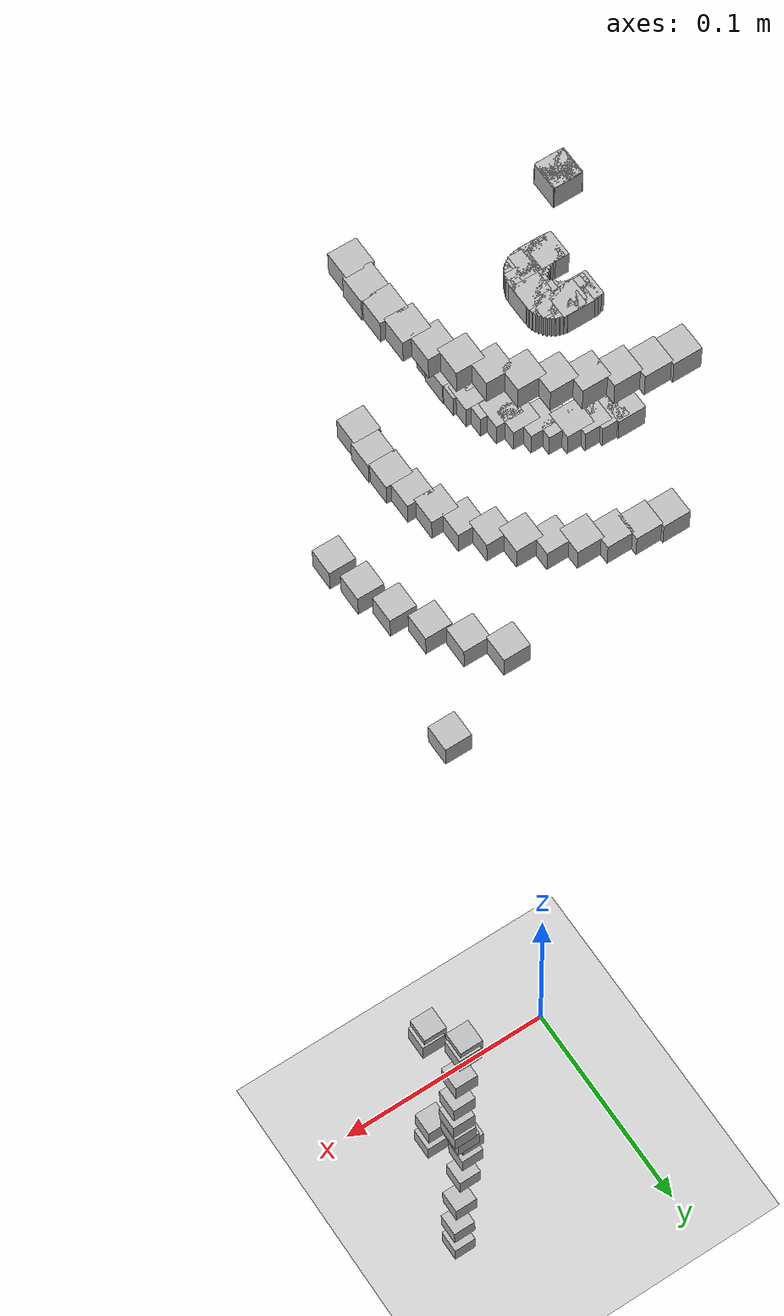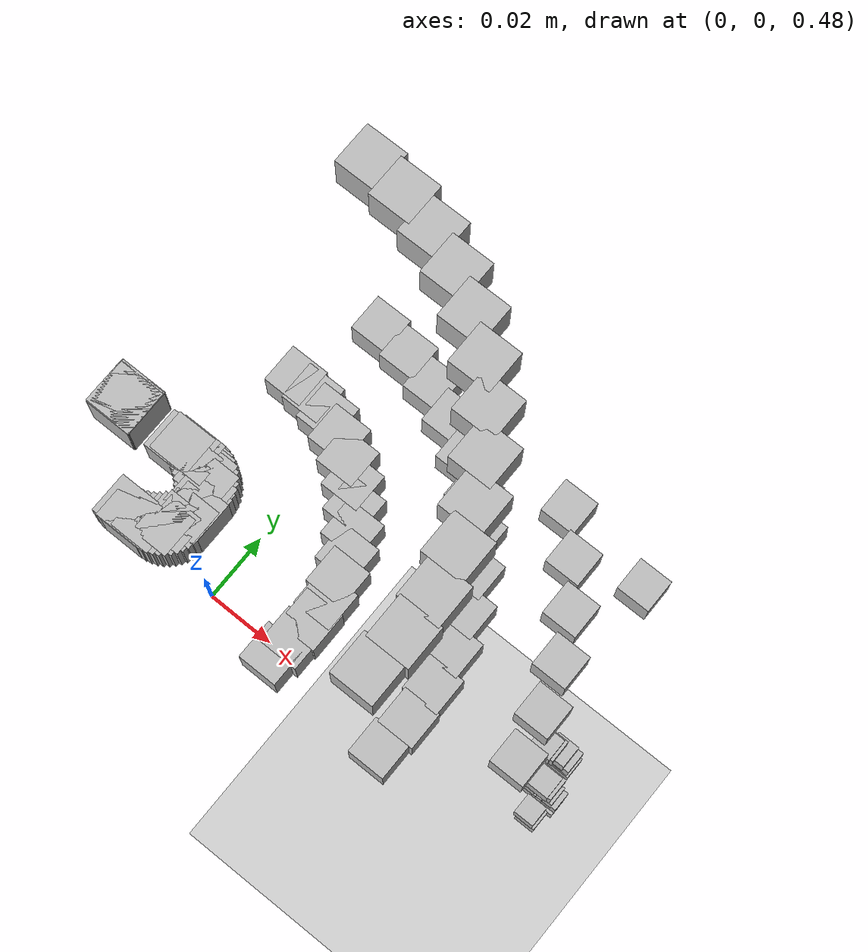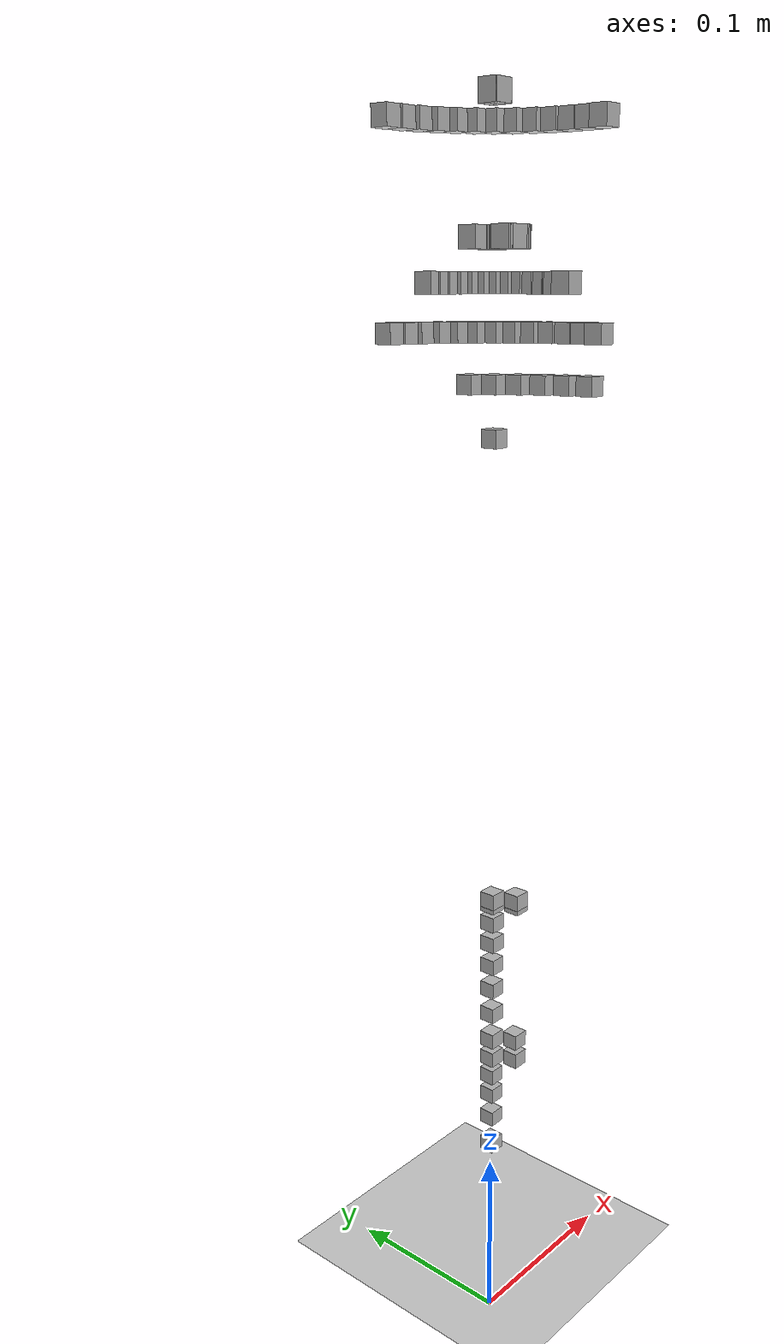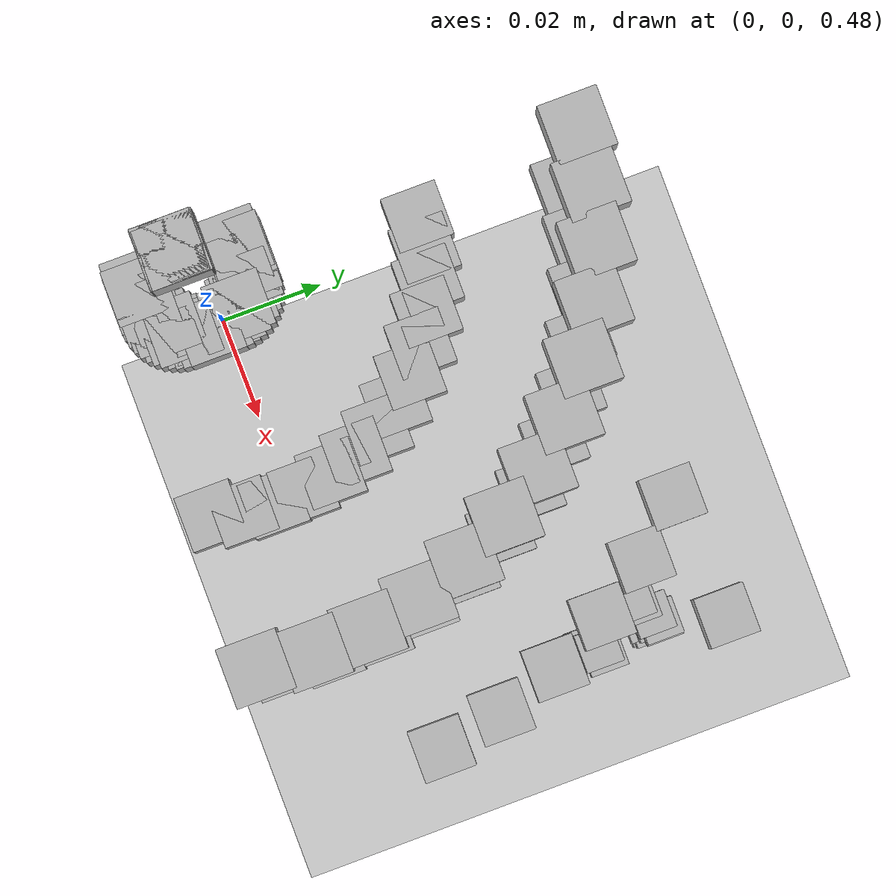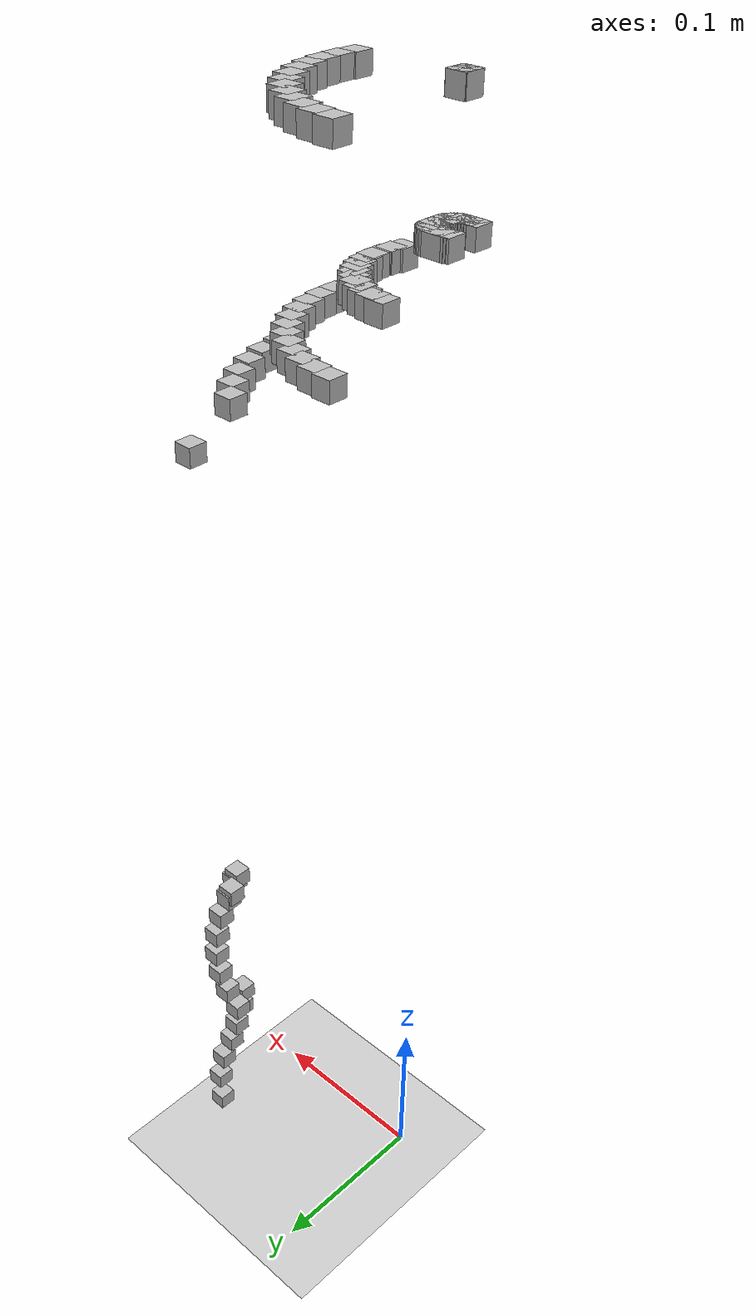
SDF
<sdf version="1.6">
 <world name="default">
  <model name="ground_plane">
   <static>1</static>
   <link name="link">
    <collision name="collision">
     <geometry><plane><normal>0 0 1</normal><size>100 100</size></plane></geometry>
     <surface>
      <contact><collide_bitmask>65535</collide_bitmask></contact>
      <friction><ode><mu>100</mu><mu2>50</mu2></ode></friction>
     </surface>
    </collision>
    <visual name="visual">
     <cast_shadows>0</cast_shadows>
     <geometry><plane><normal>0 0 1</normal><size>100 100</size></plane></geometry>
     <material>
      <script><uri>file://media/materials/scripts/gazebo.material</uri><name>Gazebo/Grey</name></script>
     </material>
    </visual>
   </link>
  </model>
  <model name="box_1685262135_6651304">
   <pose>0.09136006337348251 0.07398192059153011 0.02920890265866033 0.0 0.0 0.0</pose>
   <static>1</static>
   <link name="box_1685262135_6651304_link">
    <visual name="visual"><geometry><box><size>0.01 0.01 0.01</size></box></geometry></visual>
   </link>
  </model>
  <model name="box_1685262135_666611">
   <pose>0.09157128236825111 0.07415296236100122 0.05028140928145608 0.0 0.0 0.0</pose>
   <static>1</static>
   <link name="box_1685262135_666611_link">
    <visual name="visual"><geometry><box><size>0.01 0.01 0.01</size></box></geometry></visual>
   </link>
  </model>
  <model name="box_1685262135_6680815">
   <pose>0.08929295696992076 0.07230801083101064 0.06994559093984248 0.0 0.0 0.0</pose>
   <static>1</static>
   <link name="box_1685262135_6680815_link">
    <visual name="visual"><geometry><box><size>0.01 0.01 0.01</size></box></geometry></visual>
   </link>
  </model>
  <model name="box_1685262135_6697624">
   <pose>0.0849009475435602 0.0687514317239019 0.08776207523471741 0.0 0.0 0.0</pose>
   <static>1</static>
   <link name="box_1685262135_6697624_link">
    <visual name="visual"><geometry><box><size>0.01 0.01 0.01</size></box></geometry></visual>
   </link>
  </model>
  <model name="box_1685262135_6714044">
   <pose>0.09053293095680652 0.054397672937086146 0.10333120046485805 0.0 0.0 0.0</pose>
   <static>1</static>
   <link name="box_1685262135_6714044_link">
    <visual name="visual"><geometry><box><size>0.01 0.01 0.01</size></box></geometry></visual>
   </link>
  </model>
  <model name="box_1685262135_6714237">
   <pose>0.082081177868445 0.06646802726370615 0.10333120046485805 0.0 0.0 0.0</pose>
   <static>1</static>
   <link name="box_1685262135_6714237_link">
    <visual name="visual"><geometry><box><size>0.01 0.01 0.01</size></box></geometry></visual>
   </link>
  </model>
  <model name="box_1685262135_6729372">
   <pose>0.08950031827748561 0.053777216643373676 0.1175214826546544 0.0 0.0 0.0</pose>
   <static>1</static>
   <link name="box_1685262135_6729372_link">
    <visual name="visual"><geometry><box><size>0.01 0.01 0.01</size></box></geometry></visual>
   </link>
  </model>
  <model name="box_1685262135_6729543">
   <pose>0.08114496533114199 0.06570989729932118 0.1175214826546544 0.0 0.0 0.0</pose>
   <static>1</static>
   <link name="box_1685262135_6729543_link">
    <visual name="visual"><geometry><box><size>0.01 0.01 0.01</size></box></geometry></visual>
   </link>
  </model>
  <model name="box_1685262135_6736085">
   <pose>0.06610302337391895 -0.010469690360837893 0.6394057500981778 0.0 0.0 0.0</pose>
   <static>1</static>
   <link name="box_1685262135_6736085_link">
    <visual name="visual"><geometry><box><size>0.01 0.01 0.01</size></box></geometry></visual>
   </link>
  </model>
  <model name="box_1685262135_6736252">
   <pose>0.06691681256807912 -0.0011680373081651874 0.6394057500981778 0.0 0.0 0.0</pose>
   <static>1</static>
   <link name="box_1685262135_6736252_link">
    <visual name="visual"><geometry><box><size>0.01 0.01 0.01</size></box></geometry></visual>
   </link>
  </model>
  <model name="box_1685262135_673642">
   <pose>0.06642814212234774 0.008156350262088207 0.6394057500981778 0.0 0.0 0.0</pose>
   <static>1</static>
   <link name="box_1685262135_673642_link">
    <visual name="visual"><geometry><box><size>0.01 0.01 0.01</size></box></geometry></visual>
   </link>
  </model>
  <model name="box_1685262135_6736586">
   <pose>0.06464652345109659 0.017321983752200967 0.6394057500981778 0.0 0.0 0.0</pose>
   <static>1</static>
   <link name="box_1685262135_6736586_link">
    <visual name="visual"><geometry><box><size>0.01 0.01 0.01</size></box></geometry></visual>
   </link>
  </model>
  <model name="box_1685262135_6736755">
   <pose>0.06160663373520038 0.026150464532041614 0.6394057500981778 0.0 0.0 0.0</pose>
   <static>1</static>
   <link name="box_1685262135_6736755_link">
    <visual name="visual"><geometry><box><size>0.01 0.01 0.01</size></box></geometry></visual>
   </link>
  </model>
  <model name="box_1685262135_673695">
   <pose>0.05736764097015572 0.034469956265478593 0.6394057500981778 0.0 0.0 0.0</pose>
   <static>1</static>
   <link name="box_1685262135_673695_link">
    <visual name="visual"><geometry><box><size>0.01 0.01 0.01</size></box></geometry></visual>
   </link>
  </model>
  <model name="box_1685262135_6737125">
   <pose>0.05201205232835139 0.04211852950920215 0.6394057500981778 0.0 0.0 0.0</pose>
   <static>1</static>
   <link name="box_1685262135_6737125_link">
    <visual name="visual"><geometry><box><size>0.01 0.01 0.01</size></box></geometry></visual>
   </link>
  </model>
  <model name="box_1685262135_673729">
   <pose>0.04564410825080834 0.04894731348514631 0.6394057500981778 0.0 0.0 0.0</pose>
   <static>1</static>
   <link name="box_1685262135_673729_link">
    <visual name="visual"><geometry><box><size>0.01 0.01 0.01</size></box></geometry></visual>
   </link>
  </model>
  <model name="box_1685262135_6737454">
   <pose>0.03838775352556691 0.05482339368084596 0.6394057500981778 0.0 0.0 0.0</pose>
   <static>1</static>
   <link name="box_1685262135_6737454_link">
    <visual name="visual"><geometry><box><size>0.01 0.01 0.01</size></box></geometry></visual>
   </link>
  </model>
  <model name="box_1685262135_6737719">
   <pose>0.030384224843372765 0.05963239887923397 0.6394057500981778 0.0 0.0 0.0</pose>
   <static>1</static>
   <link name="box_1685262135_6737719_link">
    <visual name="visual"><geometry><box><size>0.01 0.01 0.01</size></box></geometry></visual>
   </link>
  </model>
  <model name="box_1685262135_6737895">
   <pose>0.02178930178614587 0.06328072726428605 0.6394057500981778 0.0 0.0 0.0</pose>
   <static>1</static>
   <link name="box_1685262135_6737895_link">
    <visual name="visual"><geometry><box><size>0.01 0.01 0.01</size></box></geometry></visual>
   </link>
  </model>
  <model name="box_1685262135_6738071">
   <pose>0.012770274754615072 0.0656973682738992 0.6394057500981778 0.0 0.0 0.0</pose>
   <static>1</static>
   <link name="box_1685262135_6738071_link">
    <visual name="visual"><geometry><box><size>0.01 0.01 0.01</size></box></geometry></visual>
   </link>
  </model>
  <model name="box_1685262135_6738238">
   <pose>0.0035026888509579264 0.06683528473970969 0.6394057500981778 0.0 0.0 0.0</pose>
   <static>1</static>
   <link name="box_1685262135_6738238_link">
    <visual name="visual"><geometry><box><size>0.01 0.01 0.01</size></box></geometry></visual>
   </link>
  </model>
  <model name="box_1685262135_6744823">
   <pose>0.08565939872195827 0.0693656133781266 0.13255102465284446 0.0 0.0 0.0</pose>
   <static>1</static>
   <link name="box_1685262135_6744823_link">
    <visual name="visual"><geometry><box><size>0.01 0.01 0.01</size></box></geometry></visual>
   </link>
  </model>
  <model name="box_1685262135_6747727">
   <pose>-0.0002456911133558205 -4.7757514566494656e-05 0.6441147879553712 0.0 0.0 0.0</pose>
   <static>1</static>
   <link name="box_1685262135_6747727_link">
    <visual name="visual"><geometry><box><size>0.01 0.01 0.01</size></box></geometry></visual>
   </link>
  </model>
  <model name="box_1685262135_6747906">
   <pose>-0.00023665350293347 -8.148633584172062e-05 0.6441147879553712 0.0 0.0 0.0</pose>
   <static>1</static>
   <link name="box_1685262135_6747906_link">
    <visual name="visual"><geometry><box><size>0.01 0.01 0.01</size></box></geometry></visual>
   </link>
  </model>
  <model name="box_1685262135_6748083">
   <pose>-0.0002230097012658893 -0.00011362911827912057 0.6441147879553712 0.0 0.0 0.0</pose>
   <static>1</static>
   <link name="box_1685262135_6748083_link">
    <visual name="visual"><geometry><box><size>0.01 0.01 0.01</size></box></geometry></visual>
   </link>
  </model>
  <model name="box_1685262135_6748252">
   <pose>-0.00020502526943294344 -0.00014356023918042388 0.6441147879553712 0.0 0.0 0.0</pose>
   <static>1</static>
   <link name="box_1685262135_6748252_link">
    <visual name="visual"><geometry><box><size>0.01 0.01 0.01</size></box></geometry></visual>
   </link>
  </model>
  <model name="box_1685262135_6748493">
   <pose>-0.00018305025394327277 -0.0001706971233234319 0.6441147879553712 0.0 0.0 0.0</pose>
   <static>1</static>
   <link name="box_1685262135_6748493_link">
    <visual name="visual"><geometry><box><size>0.01 0.01 0.01</size></box></geometry></visual>
   </link>
  </model>
  <model name="box_1685262135_674874">
   <pose>-0.000157512373477174 -0.0001945115821260493 0.6441147879553712 0.0 0.0 0.0</pose>
   <static>1</static>
   <link name="box_1685262135_674874_link">
    <visual name="visual"><geometry><box><size>0.01 0.01 0.01</size></box></geometry></visual>
   </link>
  </model>
  <model name="box_1685262135_6748915">
   <pose>-0.00012890869382901137 -0.00021454009423622843 0.6441147879553712 0.0 0.0 0.0</pose>
   <static>1</static>
   <link name="box_1685262135_6748915_link">
    <visual name="visual"><geometry><box><size>0.01 0.01 0.01</size></box></geometry></visual>
   </link>
  </model>
  <model name="box_1685262135_6749122">
   <pose>-9.779595308693284e-05 -0.0002303928274478396 0.6441147879553712 0.0 0.0 0.0</pose>
   <static>1</static>
   <link name="box_1685262135_6749122_link">
    <visual name="visual"><geometry><box><size>0.01 0.01 0.01</size></box></geometry></visual>
   </link>
  </model>
  <model name="box_1685262135_674933">
   <pose>-6.477972535926515e-05 -0.0002417612263411355 0.6441147879553712 0.0 0.0 0.0</pose>
   <static>1</static>
   <link name="box_1685262135_674933_link">
    <visual name="visual"><geometry><box><size>0.01 0.01 0.01</size></box></geometry></visual>
   </link>
  </model>
  <model name="box_1685262135_6749566">
   <pose>-3.050263396332469e-05 -0.00024842401796302025 0.6441147879553712 0.0 0.0 0.0</pose>
   <static>1</static>
   <link name="box_1685262135_6749566_link">
    <visual name="visual"><geometry><box><size>0.01 0.01 0.01</size></box></geometry></visual>
   </link>
  </model>
  <model name="box_1685262135_674977">
   <pose>4.3681565064798886e-06 -0.00025025151865338695 0.6441147879553712 0.0 0.0 0.0</pose>
   <static>1</static>
   <link name="box_1685262135_674977_link">
    <visual name="visual"><geometry><box><size>0.01 0.01 0.01</size></box></geometry></visual>
   </link>
  </model>
  <model name="box_1685262135_6749976">
   <pose>3.9153925778590333e-05 -0.00024720815819004885 0.6441147879553712 0.0 0.0 0.0</pose>
   <static>1</static>
   <link name="box_1685262135_6749976_link">
    <visual name="visual"><geometry><box><size>0.01 0.01 0.01</size></box></geometry></visual>
   </link>
  </model>
  <model name="box_1685262135_6750174">
   <pose>7.317760842235092e-05 -0.0002393531721226536 0.6441147879553712 0.0 0.0 0.0</pose>
   <static>1</static>
   <link name="box_1685262135_6750174_link">
    <visual name="visual"><geometry><box><size>0.01 0.01 0.01</size></box></geometry></visual>
   </link>
  </model>
  <model name="box_1685262135_6750343">
   <pose>0.0001057769721564663 -0.00022683944882008887 0.6441147879553712 0.0 0.0 0.0</pose>
   <static>1</static>
   <link name="box_1685262135_6750343_link">
    <visual name="visual"><geometry><box><size>0.01 0.01 0.01</size></box></geometry></visual>
   </link>
  </model>
  <model name="box_1685262135_675051">
   <pose>0.00013631750744707858 -0.00020991055367228974 0.6441147879553712 0.0 0.0 0.0</pose>
   <static>1</static>
   <link name="box_1685262135_675051_link">
    <visual name="visual"><geometry><box><size>0.01 0.01 0.01</size></box></geometry></visual>
   </link>
  </model>
  <model name="box_1685262135_6750672">
   <pose>0.00016420477751409994 -0.0001888959883669754 0.6441147879553712 0.0 0.0 0.0</pose>
   <static>1</static>
   <link name="box_1685262135_6750672_link">
    <visual name="visual"><geometry><box><size>0.01 0.01 0.01</size></box></geometry></visual>
   </link>
  </model>
  <model name="box_1685262135_6750863">
   <pose>0.00018889598836697543 -0.0001642047775140999 0.6441147879553712 0.0 0.0 0.0</pose>
   <static>1</static>
   <link name="box_1685262135_6750863_link">
    <visual name="visual"><geometry><box><size>0.01 0.01 0.01</size></box></geometry></visual>
   </link>
  </model>
  <model name="box_1685262135_6751065">
   <pose>0.00020991055367228977 -0.00013631750744707855 0.6441147879553712 0.0 0.0 0.0</pose>
   <static>1</static>
   <link name="box_1685262135_6751065_link">
    <visual name="visual"><geometry><box><size>0.01 0.01 0.01</size></box></geometry></visual>
   </link>
  </model>
  <model name="box_1685262135_675124">
   <pose>0.00022683944882008887 -0.0001057769721564663 0.6441147879553712 0.0 0.0 0.0</pose>
   <static>1</static>
   <link name="box_1685262135_675124_link">
    <visual name="visual"><geometry><box><size>0.01 0.01 0.01</size></box></geometry></visual>
   </link>
  </model>
  <model name="box_1685262135_6751409">
   <pose>0.0002393531721226536 -7.317760842235092e-05 0.6441147879553712 0.0 0.0 0.0</pose>
   <static>1</static>
   <link name="box_1685262135_6751409_link">
    <visual name="visual"><geometry><box><size>0.01 0.01 0.01</size></box></geometry></visual>
   </link>
  </model>
  <model name="box_1685262135_6751575">
   <pose>0.00024720815819004885 -3.915392577859031e-05 0.6441147879553712 0.0 0.0 0.0</pose>
   <static>1</static>
   <link name="box_1685262135_6751575_link">
    <visual name="visual"><geometry><box><size>0.01 0.01 0.01</size></box></geometry></visual>
   </link>
  </model>
  <model name="box_1685262135_6751802">
   <pose>0.00025025151865338695 -4.3681565064799225e-06 0.6441147879553712 0.0 0.0 0.0</pose>
   <static>1</static>
   <link name="box_1685262135_6751802_link">
    <visual name="visual"><geometry><box><size>0.01 0.01 0.01</size></box></geometry></visual>
   </link>
  </model>
  <model name="box_1685262135_6752028">
   <pose>0.0002484240179630202 3.0502633963324718e-05 0.6441147879553712 0.0 0.0 0.0</pose>
   <static>1</static>
   <link name="box_1685262135_6752028_link">
    <visual name="visual"><geometry><box><size>0.01 0.01 0.01</size></box></geometry></visual>
   </link>
  </model>
  <model name="box_1685262135_6752205">
   <pose>0.0002417612263411355 6.477972535926512e-05 0.6441147879553712 0.0 0.0 0.0</pose>
   <static>1</static>
   <link name="box_1685262135_6752205_link">
    <visual name="visual"><geometry><box><size>0.01 0.01 0.01</size></box></geometry></visual>
   </link>
  </model>
  <model name="box_1685262135_675238">
   <pose>0.0002303928274478396 9.779595308693288e-05 0.6441147879553712 0.0 0.0 0.0</pose>
   <static>1</static>
   <link name="box_1685262135_675238_link">
    <visual name="visual"><geometry><box><size>0.01 0.01 0.01</size></box></geometry></visual>
   </link>
  </model>
  <model name="box_1685262135_6752553">
   <pose>0.00021454009423622843 0.00012890869382901134 0.6441147879553712 0.0 0.0 0.0</pose>
   <static>1</static>
   <link name="box_1685262135_6752553_link">
    <visual name="visual"><geometry><box><size>0.01 0.01 0.01</size></box></geometry></visual>
   </link>
  </model>
  <model name="box_1685262135_675275">
   <pose>0.00019451158212604926 0.00015751237347717402 0.6441147879553712 0.0 0.0 0.0</pose>
   <static>1</static>
   <link name="box_1685262135_675275_link">
    <visual name="visual"><geometry><box><size>0.01 0.01 0.01</size></box></geometry></visual>
   </link>
  </model>
  <model name="box_1685262135_6752925">
   <pose>0.00017069712332343188 0.00018305025394327277 0.6441147879553712 0.0 0.0 0.0</pose>
   <static>1</static>
   <link name="box_1685262135_6752925_link">
    <visual name="visual"><geometry><box><size>0.01 0.01 0.01</size></box></geometry></visual>
   </link>
  </model>
  <model name="box_1685262135_6753101">
   <pose>0.00014356023918042383 0.0002050252694329435 0.6441147879553712 0.0 0.0 0.0</pose>
   <static>1</static>
   <link name="box_1685262135_6753101_link">
    <visual name="visual"><geometry><box><size>0.01 0.01 0.01</size></box></geometry></visual>
   </link>
  </model>
  <model name="box_1685262135_6753373">
   <pose>0.00011362911827912055 0.0002230097012658893 0.6441147879553712 0.0 0.0 0.0</pose>
   <static>1</static>
   <link name="box_1685262135_6753373_link">
    <visual name="visual"><geometry><box><size>0.01 0.01 0.01</size></box></geometry></visual>
   </link>
  </model>
  <model name="box_1685262135_6753583">
   <pose>8.148633584172055e-05 0.00023665350293347 0.6441147879553712 0.0 0.0 0.0</pose>
   <static>1</static>
   <link name="box_1685262135_6753583_link">
    <visual name="visual"><geometry><box><size>0.01 0.01 0.01</size></box></geometry></visual>
   </link>
  </model>
  <model name="box_1685262135_6753755">
   <pose>4.775751456649464e-05 0.0002456911133558205 0.6441147879553712 0.0 0.0 0.0</pose>
   <static>1</static>
   <link name="box_1685262135_6753755_link">
    <visual name="visual"><geometry><box><size>0.01 0.01 0.01</size></box></geometry></visual>
   </link>
  </model>
  <model name="box_1685262135_6753929">
   <pose>1.3099147593599585e-05 0.0002499466257261991 0.6441147879553712 0.0 0.0 0.0</pose>
   <static>1</static>
   <link name="box_1685262135_6753929_link">
    <visual name="visual"><geometry><box><size>0.01 0.01 0.01</size></box></geometry></visual>
   </link>
  </model>
  <model name="box_1685262135_6754103">
   <pose>-2.18141793871454e-05 0.00024933721133689013 0.6441147879553712 0.0 0.0 0.0</pose>
   <static>1</static>
   <link name="box_1685262135_6754103_link">
    <visual name="visual"><geometry><box><size>0.01 0.01 0.01</size></box></geometry></visual>
   </link>
  </model>
  <model name="box_1685262135_675427">
   <pose>-5.6302918179380763e-05 0.0002438747317457828 0.6441147879553712 0.0 0.0 0.0</pose>
   <static>1</static>
   <link name="box_1685262135_675427_link">
    <visual name="visual"><geometry><box><size>0.01 0.01 0.01</size></box></geometry></visual>
   </link>
  </model>
  <model name="box_1685262135_6754467">
   <pose>-8.969578471287479e-05 0.00023366550790463958 0.6441147879553712 0.0 0.0 0.0</pose>
   <static>1</static>
   <link name="box_1685262135_6754467_link">
    <visual name="visual"><geometry><box><size>0.01 0.01 0.01</size></box></geometry></visual>
   </link>
  </model>
  <model name="box_1685262135_6754646">
   <pose>-0.00012134282482437555 0.00021890825074270836 0.6441147879553712 0.0 0.0 0.0</pose>
   <static>1</static>
   <link name="box_1685262135_6754646_link">
    <visual name="visual"><geometry><box><size>0.01 0.01 0.01</size></box></geometry></visual>
   </link>
  </model>
  <model name="box_1685262135_6754823">
   <pose>-0.00015062806487608737 0.00019989019348451483 0.6441147879553712 0.0 0.0 0.0</pose>
   <static>1</static>
   <link name="box_1685262135_6754823_link">
    <visual name="visual"><geometry><box><size>0.01 0.01 0.01</size></box></geometry></visual>
   </link>
  </model>
  <model name="box_1685262135_6754992">
   <pose>-0.00017698150098187035 0.00017698150098187037 0.6441147879553712 0.0 0.0 0.0</pose>
   <static>1</static>
   <link name="box_1685262135_6754992_link">
    <visual name="visual"><geometry><box><size>0.01 0.01 0.01</size></box></geometry></visual>
   </link>
  </model>
  <model name="box_1685262135_6755161">
   <pose>-0.00019989019348451488 0.0001506280648760873 0.6441147879553712 0.0 0.0 0.0</pose>
   <static>1</static>
   <link name="box_1685262135_6755161_link">
    <visual name="visual"><geometry><box><size>0.01 0.01 0.01</size></box></geometry></visual>
   </link>
  </model>
  <model name="box_1685262135_675533">
   <pose>-0.00021890825074270833 0.0001213428248243756 0.6441147879553712 0.0 0.0 0.0</pose>
   <static>1</static>
   <link name="box_1685262135_675533_link">
    <visual name="visual"><geometry><box><size>0.01 0.01 0.01</size></box></geometry></visual>
   </link>
  </model>
  <model name="box_1685262135_6755497">
   <pose>-0.00023366550790463958 8.969578471287477e-05 0.6441147879553712 0.0 0.0 0.0</pose>
   <static>1</static>
   <link name="box_1685262135_6755497_link">
    <visual name="visual"><geometry><box><size>0.01 0.01 0.01</size></box></geometry></visual>
   </link>
  </model>
  <model name="box_1685262135_675567">
   <pose>-0.0002438747317457828 5.630291817938076e-05 0.6441147879553712 0.0 0.0 0.0</pose>
   <static>1</static>
   <link name="box_1685262135_675567_link">
    <visual name="visual"><geometry><box><size>0.01 0.01 0.01</size></box></geometry></visual>
   </link>
  </model>
  <model name="box_1685262135_676043">
   <pose>0.0884870956644425 0.07165543721286467 0.14825398363050718 0.0 0.0 0.0</pose>
   <static>1</static>
   <link name="box_1685262135_676043_link">
    <visual name="visual"><geometry><box><size>0.01 0.01 0.01</size></box></geometry></visual>
   </link>
  </model>
  <model name="box_1685262135_6768932">
   <pose>0.08957121488369686 0.07253333964669668 0.16428489958480497 0.0 0.0 0.0</pose>
   <static>1</static>
   <link name="box_1685262135_6768932_link">
    <visual name="visual"><geometry><box><size>0.01 0.01 0.01</size></box></geometry></visual>
   </link>
  </model>
  <model name="box_1685262135_6776347">
   <pose>0.08891975418436927 0.07200579717412715 0.18035913689155542 0.0 0.0 0.0</pose>
   <static>1</static>
   <link name="box_1685262135_6776347_link">
    <visual name="visual"><geometry><box><size>0.01 0.01 0.01</size></box></geometry></visual>
   </link>
  </model>
  <model name="box_1685262135_6783915">
   <pose>0.08653401132505283 0.0700738606993437 0.19617448160834577 0.0 0.0 0.0</pose>
   <static>1</static>
   <link name="box_1685262135_6783915_link">
    <visual name="visual"><geometry><box><size>0.01 0.01 0.01</size></box></geometry></visual>
   </link>
  </model>
  <model name="box_1685262135_679111">
   <pose>0.09093942334801917 0.054641918206900175 0.2113835132273968 0.0 0.0 0.0</pose>
   <static>1</static>
   <link name="box_1685262135_679111_link">
    <visual name="visual"><geometry><box><size>0.01 0.01 0.01</size></box></geometry></visual>
   </link>
  </model>
  <model name="box_1685262135_679127">
   <pose>0.08244972193205446 0.06676646836194589 0.2113835132273968 0.0 0.0 0.0</pose>
   <static>1</static>
   <link name="box_1685262135_679127_link">
    <visual name="visual"><geometry><box><size>0.01 0.01 0.01</size></box></geometry></visual>
   </link>
  </model>
  <model name="box_1685262135_6798625">
   <pose>0.08953563492040083 0.05379843702329769 0.21508165296930842 0.0 0.0 0.0</pose>
   <static>1</static>
   <link name="box_1685262135_6798625_link">
    <visual name="visual"><geometry><box><size>0.01 0.01 0.01</size></box></geometry></visual>
   </link>
  </model>
  <model name="box_1685262135_679879">
   <pose>0.08117698496883849 0.0657358262906765 0.21508165296930842 0.0 0.0 0.0</pose>
   <static>1</static>
   <link name="box_1685262135_679879_link">
    <visual name="visual"><geometry><box><size>0.01 0.01 0.01</size></box></geometry></visual>
   </link>
  </model>
  <model name="box_1685262135_6859226">
   <pose>0.0872783541073906 0.07067661759970477 0.4885508417419748 0.0 0.0 0.0</pose>
   <static>1</static>
   <link name="box_1685262135_6859226_link">
    <visual name="visual"><geometry><box><size>0.01 0.01 0.01</size></box></geometry></visual>
   </link>
  </model>
  <model name="box_1685262135_6866238">
   <pose>0.09130158217042661 0.011210424676536294 0.5182674726656538 0.0 0.0 0.0</pose>
   <static>1</static>
   <link name="box_1685262135_6866238_link">
    <visual name="visual"><geometry><box><size>0.01 0.01 0.01</size></box></geometry></visual>
   </link>
  </model>
  <model name="box_1685262135_68664">
   <pose>0.08885285188364536 0.02380804990742493 0.5182674726656538 0.0 0.0 0.0</pose>
   <static>1</static>
   <link name="box_1685262135_68664_link">
    <visual name="visual"><geometry><box><size>0.01 0.01 0.01</size></box></geometry></visual>
   </link>
  </model>
  <model name="box_1685262135_6866608">
   <pose>0.08467470190356996 0.03594227852812092 0.5182674726656538 0.0 0.0 0.0</pose>
   <static>1</static>
   <link name="box_1685262135_6866608_link">
    <visual name="visual"><geometry><box><size>0.01 0.01 0.01</size></box></geometry></visual>
   </link>
  </model>
  <model name="box_1685262135_686678">
   <pose>0.07884845516698744 0.0473769315810029 0.5182674726656538 0.0 0.0 0.0</pose>
   <static>1</static>
   <link name="box_1685262135_686678_link">
    <visual name="visual"><geometry><box><size>0.01 0.01 0.01</size></box></geometry></visual>
   </link>
  </model>
  <model name="box_1685262135_6866946">
   <pose>0.0714875129393679 0.05788944655112159 0.5182674726656538 0.0 0.0 0.0</pose>
   <static>1</static>
   <link name="box_1685262135_6866946_link">
    <visual name="visual"><geometry><box><size>0.01 0.01 0.01</size></box></geometry></visual>
   </link>
  </model>
  <model name="box_1685262135_686711">
   <pose>0.06273514758822431 0.06727520929239217 0.5182674726656538 0.0 0.0 0.0</pose>
   <static>1</static>
   <link name="box_1685262135_686711_link">
    <visual name="visual"><geometry><box><size>0.01 0.01 0.01</size></box></geometry></visual>
   </link>
  </model>
  <model name="box_1685262135_6873748">
   <pose>0.06687133389540545 -0.010591378792778983 0.5448600440676412 0.0 0.0 0.0</pose>
   <static>1</static>
   <link name="box_1685262135_6873748_link">
    <visual name="visual"><geometry><box><size>0.01 0.01 0.01</size></box></geometry></visual>
   </link>
  </model>
  <model name="box_1685262135_6873913">
   <pose>0.06769458170080958 -0.0011816133188761611 0.5448600440676412 0.0 0.0 0.0</pose>
   <static>1</static>
   <link name="box_1685262135_6873913_link">
    <visual name="visual"><geometry><box><size>0.01 0.01 0.01</size></box></geometry></visual>
   </link>
  </model>
  <model name="box_1685262135_687407">
   <pose>0.06720023147485285 0.008251150914213357 0.5448600440676412 0.0 0.0 0.0</pose>
   <static>1</static>
   <link name="box_1685262135_687407_link">
    <visual name="visual"><geometry><box><size>0.01 0.01 0.01</size></box></geometry></visual>
   </link>
  </model>
  <model name="box_1685262135_6874235">
   <pose>0.06539790518236847 0.017523315880302766 0.5448600440676412 0.0 0.0 0.0</pose>
   <static>1</static>
   <link name="box_1685262135_6874235_link">
    <visual name="visual"><geometry><box><size>0.01 0.01 0.01</size></box></geometry></visual>
   </link>
  </model>
  <model name="box_1685262135_6874397">
   <pose>0.062322683054523875 0.026454409435258466 0.5448600440676412 0.0 0.0 0.0</pose>
   <static>1</static>
   <link name="box_1685262135_6874397_link">
    <visual name="visual"><geometry><box><size>0.01 0.01 0.01</size></box></geometry></visual>
   </link>
  </model>
  <model name="box_1685262135_6874583">
   <pose>0.05803442079202421 0.03487059800200158 0.5448600440676412 0.0 0.0 0.0</pose>
   <static>1</static>
   <link name="box_1685262135_6874583_link">
    <visual name="visual"><geometry><box><size>0.01 0.01 0.01</size></box></geometry></visual>
   </link>
  </model>
  <model name="box_1685262135_6874752">
   <pose>0.05261658454198302 0.042608070043353076 0.5448600440676412 0.0 0.0 0.0</pose>
   <static>1</static>
   <link name="box_1685262135_6874752_link">
    <visual name="visual"><geometry><box><size>0.01 0.01 0.01</size></box></geometry></visual>
   </link>
  </model>
  <model name="box_1685262135_6874917">
   <pose>0.04617462632430997 0.04951622446727203 0.5448600440676412 0.0 0.0 0.0</pose>
   <static>1</static>
   <link name="box_1685262135_6874917_link">
    <visual name="visual"><geometry><box><size>0.01 0.01 0.01</size></box></geometry></visual>
   </link>
  </model>
  <model name="box_1685262135_6875074">
   <pose>0.0388339315280932 0.05546060190580605 0.5448600440676412 0.0 0.0 0.0</pose>
   <static>1</static>
   <link name="box_1685262135_6875074_link">
    <visual name="visual"><geometry><box><size>0.01 0.01 0.01</size></box></geometry></visual>
   </link>
  </model>
  <model name="box_1685262135_6875236">
   <pose>0.030737378427624484 0.060325501813743194 0.5448600440676412 0.0 0.0 0.0</pose>
   <static>1</static>
   <link name="box_1685262135_6875236_link">
    <visual name="visual"><geometry><box><size>0.01 0.01 0.01</size></box></geometry></visual>
   </link>
  </model>
  <model name="box_1685262135_6875398">
   <pose>0.022042557219311816 0.06401623444811709 0.5448600440676412 0.0 0.0 0.0</pose>
   <static>1</static>
   <link name="box_1685262135_6875398_link">
    <visual name="visual"><geometry><box><size>0.01 0.01 0.01</size></box></geometry></visual>
   </link>
  </model>
  <model name="box_1685262135_6875556">
   <pose>0.012918702707762452 0.0664609638963458 0.5448600440676412 0.0 0.0 0.0</pose>
   <static>1</static>
   <link name="box_1685262135_6875556_link">
    <visual name="visual"><geometry><box><size>0.01 0.01 0.01</size></box></geometry></visual>
   </link>
  </model>
  <model name="box_1685262135_687572">
   <pose>0.003543400342813021 0.06761210628055808 0.5448600440676412 0.0 0.0 0.0</pose>
   <static>1</static>
   <link name="box_1685262135_687572_link">
    <visual name="visual"><geometry><box><size>0.01 0.01 0.01</size></box></geometry></visual>
   </link>
  </model>
  <model name="box_1685262135_6880767">
   <pose>0.038235181641221735 -0.011689668138866382 0.5678387857354699 0.0 0.0 0.0</pose>
   <static>1</static>
   <link name="box_1685262135_6880767_link">
    <visual name="visual"><geometry><box><size>0.01 0.01 0.01</size></box></geometry></visual>
   </link>
  </model>
  <model name="box_1685262135_688093">
   <pose>0.0394899668459159 -0.006254596297324884 0.5678387857354699 0.0 0.0 0.0</pose>
   <static>1</static>
   <link name="box_1685262135_688093_link">
    <visual name="visual"><geometry><box><size>0.01 0.01 0.01</size></box></geometry></visual>
   </link>
  </model>
  <model name="box_1685262135_6881092">
   <pose>0.03997612476512583 -0.0006977858533537982 0.5678387857354699 0.0 0.0 0.0</pose>
   <static>1</static>
   <link name="box_1685262135_6881092_link">
    <visual name="visual"><geometry><box><size>0.01 0.01 0.01</size></box></geometry></visual>
   </link>
  </model>
  <model name="box_1685262135_6881254">
   <pose>0.039684192887950526 0.004872606198533175 0.5678387857354699 0.0 0.0 0.0</pose>
   <static>1</static>
   <link name="box_1685262135_6881254_link">
    <visual name="visual"><geometry><box><size>0.01 0.01 0.01</size></box></geometry></visual>
   </link>
  </model>
  <model name="box_1685262135_6881418">
   <pose>0.038619853336311634 0.0103481585132731 0.5678387857354699 0.0 0.0 0.0</pose>
   <static>1</static>
   <link name="box_1685262135_6881418_link">
    <visual name="visual"><geometry><box><size>0.01 0.01 0.01</size></box></geometry></visual>
   </link>
  </model>
  <model name="box_1685262135_6881585">
   <pose>0.036803822268913496 0.015622295693408011 0.5678387857354699 0.0 0.0 0.0</pose>
   <static>1</static>
   <link name="box_1685262135_6881585_link">
    <visual name="visual"><geometry><box><size>0.01 0.01 0.01</size></box></geometry></visual>
   </link>
  </model>
  <model name="box_1685262135_6881766">
   <pose>0.0342714466647783 0.020592362657968703 0.5678387857354699 0.0 0.0 0.0</pose>
   <static>1</static>
   <link name="box_1685262135_6881766_link">
    <visual name="visual"><geometry><box><size>0.01 0.01 0.01</size></box></geometry></visual>
   </link>
  </model>
  <model name="box_1685262135_6881933">
   <pose>0.031072016334505972 0.025161622706857387 0.5678387857354699 0.0 0.0 0.0</pose>
   <static>1</static>
   <link name="box_1685262135_6881933_link">
    <visual name="visual"><geometry><box><size>0.01 0.01 0.01</size></box></geometry></visual>
   </link>
  </model>
  <model name="box_1685262135_6882093">
   <pose>0.027267804550177216 0.02924114039067871 0.5678387857354699 0.0 0.0 0.0</pose>
   <static>1</static>
   <link name="box_1685262135_6882093_link">
    <visual name="visual"><geometry><box><size>0.01 0.01 0.01</size></box></geometry></visual>
   </link>
  </model>
  <model name="box_1685262135_6882255">
   <pose>0.022932855966947222 0.03275151253809968 0.5678387857354699 0.0 0.0 0.0</pose>
   <static>1</static>
   <link name="box_1685262135_6882255_link">
    <visual name="visual"><geometry><box><size>0.01 0.01 0.01</size></box></geometry></visual>
   </link>
  </model>
  <model name="box_1685262135_6882417">
   <pose>0.018151545428057626 0.03562441374825988 0.5678387857354699 0.0 0.0 0.0</pose>
   <static>1</static>
   <link name="box_1685262135_6882417_link">
    <visual name="visual"><geometry><box><size>0.01 0.01 0.01</size></box></geometry></visual>
   </link>
  </model>
  <model name="box_1685262135_6882577">
   <pose>0.013016935704487793 0.03780392626698023 0.5678387857354699 0.0 0.0 0.0</pose>
   <static>1</static>
   <link name="box_1685262135_6882577_link">
    <visual name="visual"><geometry><box><size>0.01 0.01 0.01</size></box></geometry></visual>
   </link>
  </model>
  <model name="box_1685262135_6882744">
   <pose>0.007628966133975009 0.039247628362242604 0.5678387857354699 0.0 0.0 0.0</pose>
   <static>1</static>
   <link name="box_1685262135_6882744_link">
    <visual name="visual"><geometry><box><size>0.01 0.01 0.01</size></box></geometry></visual>
   </link>
  </model>
  <model name="box_1685262135_6882913">
   <pose>0.00209250741548476 0.039927420014949484 0.5678387857354699 0.0 0.0 0.0</pose>
   <static>1</static>
   <link name="box_1685262135_6882913_link">
    <visual name="visual"><geometry><box><size>0.01 0.01 0.01</size></box></geometry></visual>
   </link>
  </model>
  <model name="box_1685262135_6886144">
   <pose>-0.0024079316412458284 -0.008986523226282142 0.5867290727416858 0.0 0.0 0.0</pose>
   <static>1</static>
   <link name="box_1685262135_6886144_link">
    <visual name="visual"><geometry><box><size>0.01 0.01 0.01</size></box></geometry></visual>
   </link>
  </model>
  <model name="box_1685262135_6886315">
   <pose>-0.0011338155117868866 -0.009234186313403725 0.5867290727416858 0.0 0.0 0.0</pose>
   <static>1</static>
   <link name="box_1685262135_6886315_link">
    <visual name="visual"><geometry><box><size>0.01 0.01 0.01</size></box></geometry></visual>
   </link>
  </model>
  <model name="box_1685262135_6886485">
   <pose>0.00016236904691295344 -0.009302116467666153 0.5867290727416858 0.0 0.0 0.0</pose>
   <static>1</static>
   <link name="box_1685262135_6886485_link">
    <visual name="visual"><geometry><box><size>0.01 0.01 0.01</size></box></geometry></visual>
   </link>
  </model>
  <model name="box_1685262135_6886652">
   <pose>0.0014553932768066903 -0.009188991505886113 0.5867290727416858 0.0 0.0 0.0</pose>
   <static>1</static>
   <link name="box_1685262135_6886652_link">
    <visual name="visual"><geometry><box><size>0.01 0.01 0.01</size></box></geometry></visual>
   </link>
  </model>
  <model name="box_1685262135_6886818">
   <pose>0.0027200899320526987 -0.008897013276766915 0.5867290727416858 0.0 0.0 0.0</pose>
   <static>1</static>
   <link name="box_1685262135_6886818_link">
    <visual name="visual"><geometry><box><size>0.01 0.01 0.01</size></box></geometry></visual>
   </link>
  </model>
  <model name="box_1685262135_688698">
   <pose>0.003931843130827739 -0.008431864804418057 0.5867290727416858 0.0 0.0 0.0</pose>
   <static>1</static>
   <link name="box_1685262135_688698_link">
    <visual name="visual"><geometry><box><size>0.01 0.01 0.01</size></box></geometry></visual>
   </link>
  </model>
  <model name="box_1685262135_6887143">
   <pose>0.005067067475466492 -0.007802599674755258 0.5867290727416858 0.0 0.0 0.0</pose>
   <static>1</static>
   <link name="box_1685262135_6887143_link">
    <visual name="visual"><geometry><box><size>0.01 0.01 0.01</size></box></geometry></visual>
   </link>
  </model>
  <model name="box_1685262135_6887305">
   <pose>0.006103667115399114 -0.007021465817748933 0.5867290727416858 0.0 0.0 0.0</pose>
   <static>1</static>
   <link name="box_1685262135_6887305_link">
    <visual name="visual"><geometry><box><size>0.01 0.01 0.01</size></box></geometry></visual>
   </link>
  </model>
  <model name="box_1685262135_6887465">
   <pose>0.007021465817748934 -0.006103667115399113 0.5867290727416858 0.0 0.0 0.0</pose>
   <static>1</static>
   <link name="box_1685262135_6887465_link">
    <visual name="visual"><geometry><box><size>0.01 0.01 0.01</size></box></geometry></visual>
   </link>
  </model>
  <model name="box_1685262135_6887648">
   <pose>0.007802599674755259 -0.0050670674754664915 0.5867290727416858 0.0 0.0 0.0</pose>
   <static>1</static>
   <link name="box_1685262135_6887648_link">
    <visual name="visual"><geometry><box><size>0.01 0.01 0.01</size></box></geometry></visual>
   </link>
  </model>
  <model name="box_1685262135_6887827">
   <pose>0.008431864804418057 -0.003931843130827739 0.5867290727416858 0.0 0.0 0.0</pose>
   <static>1</static>
   <link name="box_1685262135_6887827_link">
    <visual name="visual"><geometry><box><size>0.01 0.01 0.01</size></box></geometry></visual>
   </link>
  </model>
  <model name="box_1685262135_6887999">
   <pose>0.008897013276766915 -0.0027200899320526987 0.5867290727416858 0.0 0.0 0.0</pose>
   <static>1</static>
   <link name="box_1685262135_6887999_link">
    <visual name="visual"><geometry><box><size>0.01 0.01 0.01</size></box></geometry></visual>
   </link>
  </model>
  <model name="box_1685262135_6888163">
   <pose>0.009188991505886113 -0.00145539327680669 0.5867290727416858 0.0 0.0 0.0</pose>
   <static>1</static>
   <link name="box_1685262135_6888163_link">
    <visual name="visual"><geometry><box><size>0.01 0.01 0.01</size></box></geometry></visual>
   </link>
  </model>
  <model name="box_1685262135_6888328">
   <pose>0.009302116467666153 -0.00016236904691295468 0.5867290727416858 0.0 0.0 0.0</pose>
   <static>1</static>
   <link name="box_1685262135_6888328_link">
    <visual name="visual"><geometry><box><size>0.01 0.01 0.01</size></box></geometry></visual>
   </link>
  </model>
  <model name="box_1685262135_6888492">
   <pose>0.009234186313403725 0.0011338155117868876 0.5867290727416858 0.0 0.0 0.0</pose>
   <static>1</static>
   <link name="box_1685262135_6888492_link">
    <visual name="visual"><geometry><box><size>0.01 0.01 0.01</size></box></geometry></visual>
   </link>
  </model>
  <model name="box_1685262135_6888654">
   <pose>0.008986523226282142 0.002407931641245827 0.5867290727416858 0.0 0.0 0.0</pose>
   <static>1</static>
   <link name="box_1685262135_6888654_link">
    <visual name="visual"><geometry><box><size>0.01 0.01 0.01</size></box></geometry></visual>
   </link>
  </model>
  <model name="box_1685262135_6888816">
   <pose>0.008563947686579641 0.0036351801202895626 0.5867290727416858 0.0 0.0 0.0</pose>
   <static>1</static>
   <link name="box_1685262135_6888816_link">
    <visual name="visual"><geometry><box><size>0.01 0.01 0.01</size></box></geometry></visual>
   </link>
  </model>
  <model name="box_1685262135_6889007">
   <pose>0.007974684646503978 0.004791673953247961 0.5867290727416858 0.0 0.0 0.0</pose>
   <static>1</static>
   <link name="box_1685262135_6889007_link">
    <visual name="visual"><geometry><box><size>0.01 0.01 0.01</size></box></geometry></visual>
   </link>
  </model>
  <model name="box_1685262135_688918">
   <pose>0.007230203440853453 0.005854903303154726 0.5867290727416858 0.0 0.0 0.0</pose>
   <static>1</static>
   <link name="box_1685262135_688918_link">
    <visual name="visual"><geometry><box><size>0.01 0.01 0.01</size></box></geometry></visual>
   </link>
  </model>
  <model name="box_1685262135_6889346">
   <pose>0.006344994549461231 0.006804173620119382 0.5867290727416858 0.0 0.0 0.0</pose>
   <static>1</static>
   <link name="box_1685262135_6889346_link">
    <visual name="visual"><geometry><box><size>0.01 0.01 0.01</size></box></geometry></visual>
   </link>
  </model>
  <model name="box_1685262135_6889517">
   <pose>0.0053362875564880756 0.007621008437201193 0.5867290727416858 0.0 0.0 0.0</pose>
   <static>1</static>
   <link name="box_1685262135_6889517_link">
    <visual name="visual"><geometry><box><size>0.01 0.01 0.01</size></box></geometry></visual>
   </link>
  </model>
  <model name="box_1685262135_688971">
   <pose>0.0042237157961650075 0.008289508993821493 0.5867290727416858 0.0 0.0 0.0</pose>
   <static>1</static>
   <link name="box_1685262135_688971_link">
    <visual name="visual"><geometry><box><size>0.01 0.01 0.01</size></box></geometry></visual>
   </link>
  </model>
  <model name="box_1685262135_6889873">
   <pose>0.003028934212275097 0.008796663687053783 0.5867290727416858 0.0 0.0 0.0</pose>
   <static>1</static>
   <link name="box_1685262135_6889873_link">
    <visual name="visual"><geometry><box><size>0.01 0.01 0.01</size></box></geometry></visual>
   </link>
  </model>
  <model name="box_1685262135_6890032">
   <pose>0.0017751978693048521 0.009132601327674211 0.5867290727416858 0.0 0.0 0.0</pose>
   <static>1</static>
   <link name="box_1685262135_6890032_link">
    <visual name="visual"><geometry><box><size>0.01 0.01 0.01</size></box></geometry></visual>
   </link>
  </model>
  <model name="box_1685262135_68902">
   <pose>0.00048690931906623626 0.009290783271631497 0.5867290727416858 0.0 0.0 0.0</pose>
   <static>1</static>
   <link name="box_1685262135_68902_link">
    <visual name="visual"><geometry><box><size>0.01 0.01 0.01</size></box></geometry></visual>
   </link>
  </model>
  <model name="box_1685262135_6890361">
   <pose>-0.0008108563672168647 0.009268130687315815 0.5867290727416858 0.0 0.0 0.0</pose>
   <static>1</static>
   <link name="box_1685262135_6890361_link">
    <visual name="visual"><geometry><box><size>0.01 0.01 0.01</size></box></geometry></visual>
   </link>
  </model>
  <model name="box_1685262135_689055">
   <pose>-0.0020928396566475323 0.009065084481513929 0.5867290727416858 0.0 0.0 0.0</pose>
   <static>1</static>
   <link name="box_1685262135_689055_link">
    <visual name="visual"><geometry><box><size>0.01 0.01 0.01</size></box></geometry></visual>
   </link>
  </model>
  <model name="box_1685262135_6890724">
   <pose>-0.0033340882027313853 0.008685596717660142 0.5867290727416858 0.0 0.0 0.0</pose>
   <static>1</static>
   <link name="box_1685262135_6890724_link">
    <visual name="visual"><geometry><box><size>0.01 0.01 0.01</size></box></geometry></visual>
   </link>
  </model>
 </world>
</sdf>
